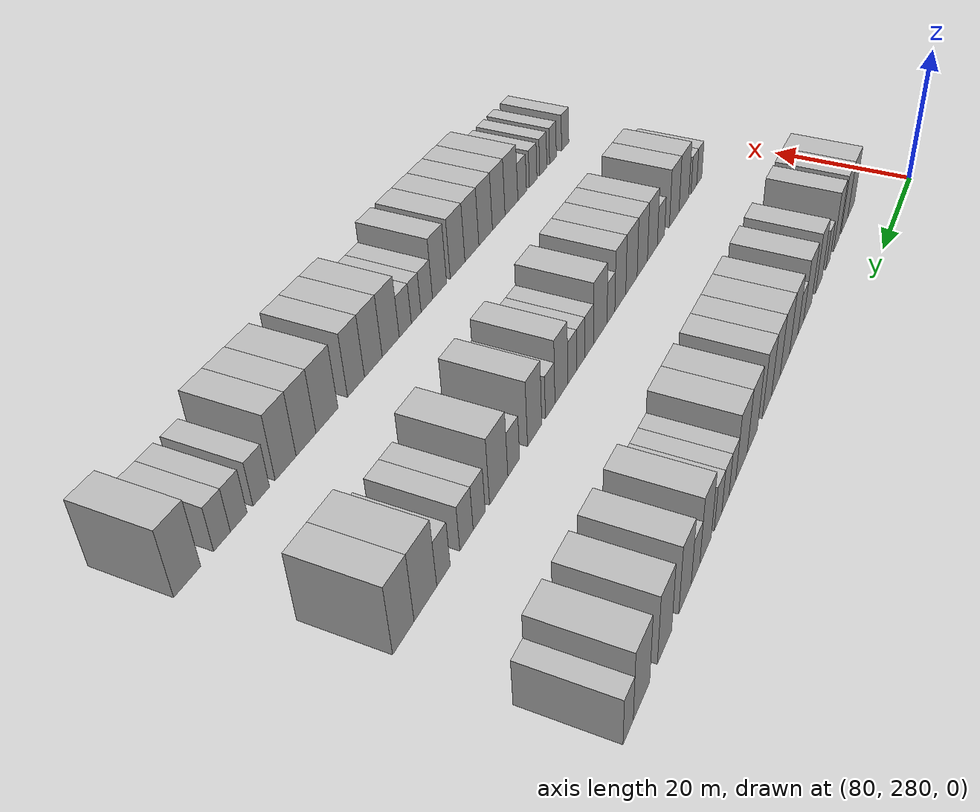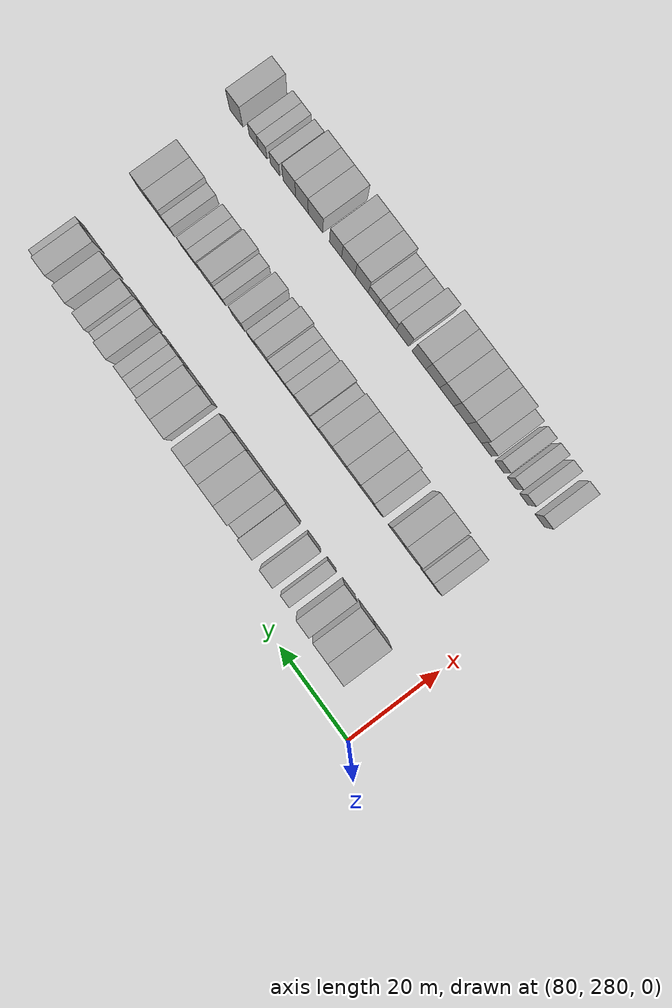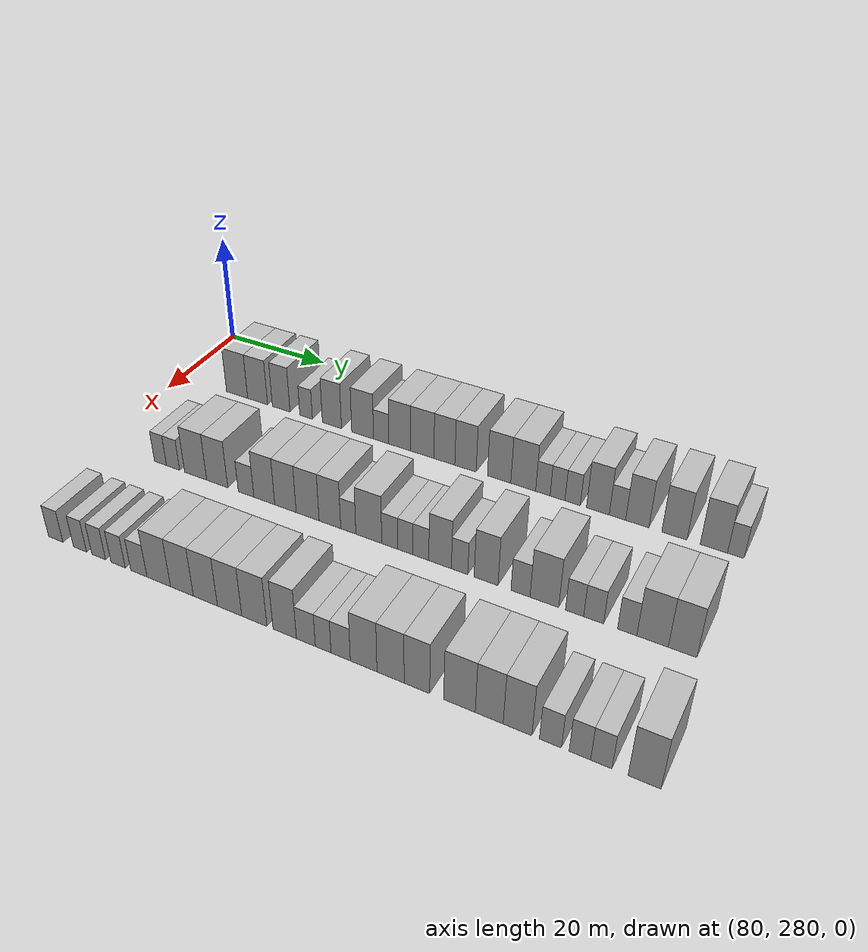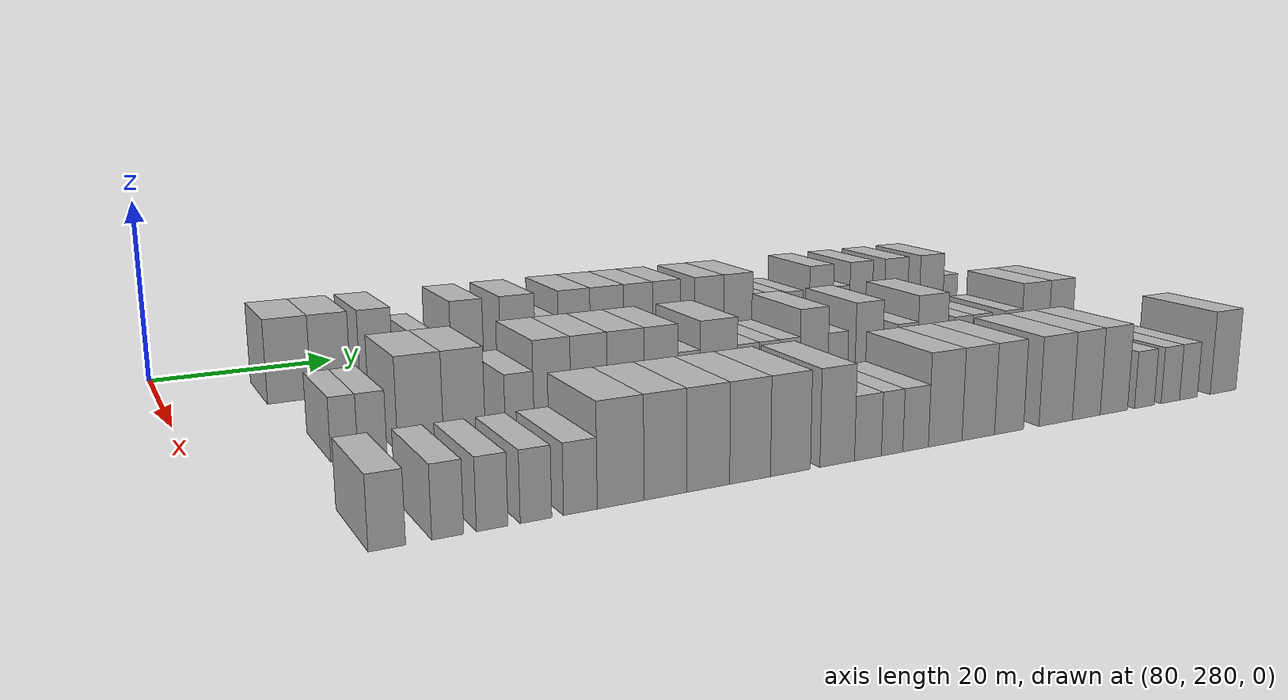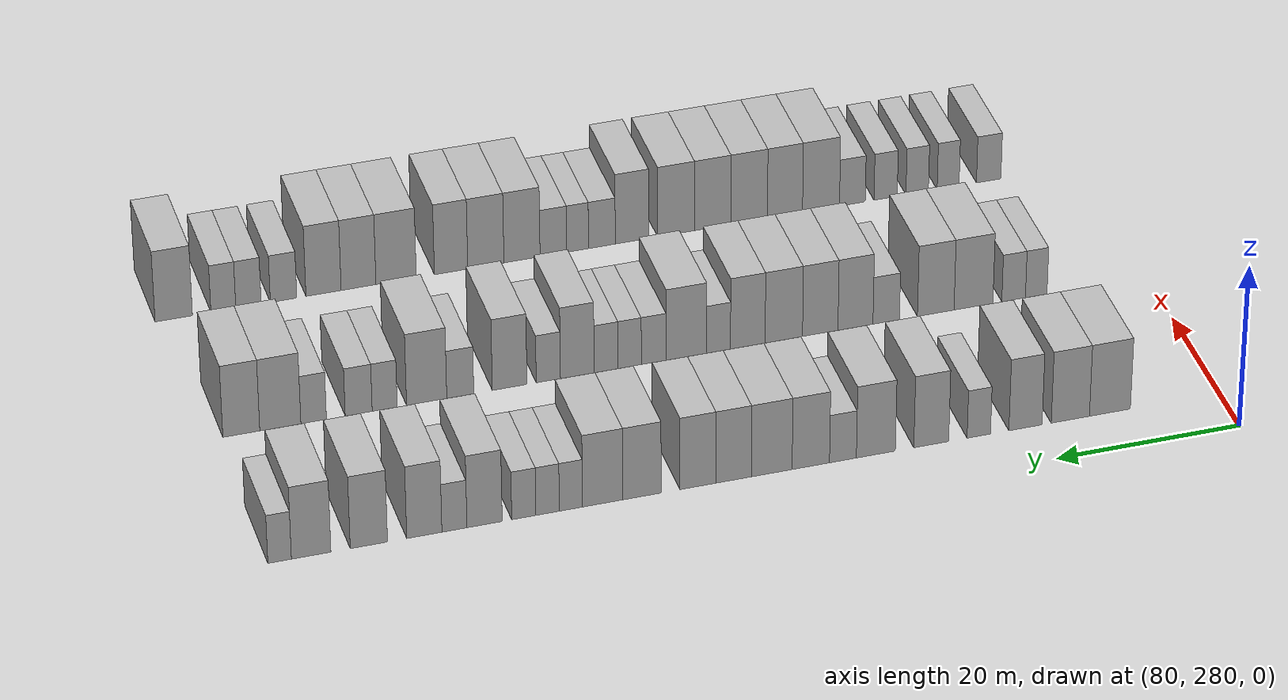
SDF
<sdf version="1.6">
 <world name="default">
  <model name="building_721">
   <static>1</static>
   <pose>91.0000 292.0585 0 0.000000 0.000000 0.000000</pose>
   <link name="link">
    <pose>0 0 4.50 0 0 0</pose>
    <collision name="collision"><geometry><box><size>10.0000 4.4937 9.0000</size></box></geometry></collision>
    <visual name="visual">
     <cast_shadows>0</cast_shadows>
     <geometry><box><size>10.0000 4.4937 9.0000</size></box></geometry>
     <material>
      <script>
       <uri>model://HANNAS_wall/materials/scripts</uri>
       <uri>model://HANNAS_wall/materials/textures</uri>
       <name>vrc/HANNAS_wall</name>
      </script>
     </material>
    </visual>
   </link>
  </model>
  <model name="building_722">
   <static>1</static>
   <pose>91.0000 296.3957 0 0.000000 0.000000 0.000000</pose>
   <link name="link">
    <pose>0 0 4.50 0 0 0</pose>
    <collision name="collision"><geometry><box><size>10.0000 4.1807 9.0000</size></box></geometry></collision>
    <visual name="visual">
     <cast_shadows>0</cast_shadows>
     <geometry><box><size>10.0000 4.1807 9.0000</size></box></geometry>
     <material>
      <script>
       <uri>model://HANNAS_wall/materials/scripts</uri>
       <uri>model://HANNAS_wall/materials/textures</uri>
       <name>vrc/HANNAS_wall</name>
      </script>
     </material>
    </visual>
   </link>
  </model>
  <model name="building_723">
   <static>1</static>
   <pose>91.0000 301.2977 0 0.000000 0.000000 0.000000</pose>
   <link name="link">
    <pose>0 0 4.50 0 0 0</pose>
    <collision name="collision"><geometry><box><size>10.0000 3.6233 9.0000</size></box></geometry></collision>
    <visual name="visual">
     <cast_shadows>0</cast_shadows>
     <geometry><box><size>10.0000 3.6233 9.0000</size></box></geometry>
     <material>
      <script>
       <uri>model://HANNAS_wall/materials/scripts</uri>
       <uri>model://HANNAS_wall/materials/textures</uri>
       <name>vrc/HANNAS_wall</name>
      </script>
     </material>
    </visual>
   </link>
  </model>
  <model name="building_724">
   <static>1</static>
   <pose>91.0000 306.3819 0 0.000000 0.000000 0.000000</pose>
   <link name="link">
    <pose>0 0 3.00 0 0 0</pose>
    <collision name="collision"><geometry><box><size>10.0000 2.5452 6.0000</size></box></geometry></collision>
    <visual name="visual">
     <cast_shadows>0</cast_shadows>
     <geometry><box><size>10.0000 2.5452 6.0000</size></box></geometry>
     <material>
      <script>
       <uri>model://HANNAS_wall/materials/scripts</uri>
       <uri>model://HANNAS_wall/materials/textures</uri>
       <name>vrc/HANNAS_wall</name>
      </script>
     </material>
    </visual>
   </link>
  </model>
  <model name="building_725">
   <static>1</static>
   <pose>91.0000 311.5425 0 0.000000 0.000000 0.000000</pose>
   <link name="link">
    <pose>0 0 4.50 0 0 0</pose>
    <collision name="collision"><geometry><box><size>10.0000 3.7760 9.0000</size></box></geometry></collision>
    <visual name="visual">
     <cast_shadows>0</cast_shadows>
     <geometry><box><size>10.0000 3.7760 9.0000</size></box></geometry>
     <material>
      <script>
       <uri>model://HANNAS_wall/materials/scripts</uri>
       <uri>model://HANNAS_wall/materials/textures</uri>
       <name>vrc/HANNAS_wall</name>
      </script>
     </material>
    </visual>
   </link>
  </model>
  <model name="building_726">
   <static>1</static>
   <pose>91.0000 317.5306 0 0.000000 0.000000 0.000000</pose>
   <link name="link">
    <pose>0 0 4.50 0 0 0</pose>
    <collision name="collision"><geometry><box><size>10.0000 4.2002 9.0000</size></box></geometry></collision>
    <visual name="visual">
     <cast_shadows>0</cast_shadows>
     <geometry><box><size>10.0000 4.2002 9.0000</size></box></geometry>
     <material>
      <script>
       <uri>model://HANNAS_wall/materials/scripts</uri>
       <uri>model://HANNAS_wall/materials/textures</uri>
       <name>vrc/HANNAS_wall</name>
      </script>
     </material>
    </visual>
   </link>
  </model>
  <model name="building_727">
   <static>1</static>
   <pose>91.0000 321.0768 0 0.000000 0.000000 0.000000</pose>
   <link name="link">
    <pose>0 0 3.00 0 0 0</pose>
    <collision name="collision"><geometry><box><size>10.0000 2.8922 6.0000</size></box></geometry></collision>
    <visual name="visual">
     <cast_shadows>0</cast_shadows>
     <geometry><box><size>10.0000 2.8922 6.0000</size></box></geometry>
     <material>
      <script>
       <uri>model://HANNAS_wall/materials/scripts</uri>
       <uri>model://HANNAS_wall/materials/textures</uri>
       <name>vrc/HANNAS_wall</name>
      </script>
     </material>
    </visual>
   </link>
  </model>
  <model name="building_728">
   <static>1</static>
   <pose>91.0000 324.5290 0 0.000000 0.000000 0.000000</pose>
   <link name="link">
    <pose>0 0 4.50 0 0 0</pose>
    <collision name="collision"><geometry><box><size>10.0000 4.0121 9.0000</size></box></geometry></collision>
    <visual name="visual">
     <cast_shadows>0</cast_shadows>
     <geometry><box><size>10.0000 4.0121 9.0000</size></box></geometry>
     <material>
      <script>
       <uri>model://HANNAS_wall/materials/scripts</uri>
       <uri>model://HANNAS_wall/materials/textures</uri>
       <name>vrc/HANNAS_wall</name>
      </script>
     </material>
    </visual>
   </link>
  </model>
  <model name="building_729">
   <static>1</static>
   <pose>91.0000 328.7197 0 0.000000 0.000000 0.000000</pose>
   <link name="link">
    <pose>0 0 4.50 0 0 0</pose>
    <collision name="collision"><geometry><box><size>10.0000 4.3693 9.0000</size></box></geometry></collision>
    <visual name="visual">
     <cast_shadows>0</cast_shadows>
     <geometry><box><size>10.0000 4.3693 9.0000</size></box></geometry>
     <material>
      <script>
       <uri>model://HANNAS_wall/materials/scripts</uri>
       <uri>model://HANNAS_wall/materials/textures</uri>
       <name>vrc/HANNAS_wall</name>
      </script>
     </material>
    </visual>
   </link>
  </model>
  <model name="building_730">
   <static>1</static>
   <pose>91.0000 332.8055 0 0.000000 0.000000 0.000000</pose>
   <link name="link">
    <pose>0 0 4.50 0 0 0</pose>
    <collision name="collision"><geometry><box><size>10.0000 3.8023 9.0000</size></box></geometry></collision>
    <visual name="visual">
     <cast_shadows>0</cast_shadows>
     <geometry><box><size>10.0000 3.8023 9.0000</size></box></geometry>
     <material>
      <script>
       <uri>model://HANNAS_wall/materials/scripts</uri>
       <uri>model://HANNAS_wall/materials/textures</uri>
       <name>vrc/HANNAS_wall</name>
      </script>
     </material>
    </visual>
   </link>
  </model>
  <model name="building_731">
   <static>1</static>
   <pose>91.0000 336.6059 0 0.000000 0.000000 0.000000</pose>
   <link name="link">
    <pose>0 0 4.50 0 0 0</pose>
    <collision name="collision"><geometry><box><size>10.0000 3.7986 9.0000</size></box></geometry></collision>
    <visual name="visual">
     <cast_shadows>0</cast_shadows>
     <geometry><box><size>10.0000 3.7986 9.0000</size></box></geometry>
     <material>
      <script>
       <uri>model://HANNAS_wall/materials/scripts</uri>
       <uri>model://HANNAS_wall/materials/textures</uri>
       <name>vrc/HANNAS_wall</name>
      </script>
     </material>
    </visual>
   </link>
  </model>
  <model name="building_732">
   <static>1</static>
   <pose>91.0000 342.5326 0 0.000000 0.000000 0.000000</pose>
   <link name="link">
    <pose>0 0 4.50 0 0 0</pose>
    <collision name="collision"><geometry><box><size>10.0000 4.0548 9.0000</size></box></geometry></collision>
    <visual name="visual">
     <cast_shadows>0</cast_shadows>
     <geometry><box><size>10.0000 4.0548 9.0000</size></box></geometry>
     <material>
      <script>
       <uri>model://HANNAS_wall/materials/scripts</uri>
       <uri>model://HANNAS_wall/materials/textures</uri>
       <name>vrc/HANNAS_wall</name>
      </script>
     </material>
    </visual>
   </link>
  </model>
  <model name="building_733">
   <static>1</static>
   <pose>91.0000 346.6892 0 0.000000 0.000000 0.000000</pose>
   <link name="link">
    <pose>0 0 4.50 0 0 0</pose>
    <collision name="collision"><geometry><box><size>10.0000 4.2583 9.0000</size></box></geometry></collision>
    <visual name="visual">
     <cast_shadows>0</cast_shadows>
     <geometry><box><size>10.0000 4.2583 9.0000</size></box></geometry>
     <material>
      <script>
       <uri>model://HANNAS_wall/materials/scripts</uri>
       <uri>model://HANNAS_wall/materials/textures</uri>
       <name>vrc/HANNAS_wall</name>
      </script>
     </material>
    </visual>
   </link>
  </model>
  <model name="building_734">
   <static>1</static>
   <pose>91.0000 350.0378 0 0.000000 0.000000 0.000000</pose>
   <link name="link">
    <pose>0 0 3.00 0 0 0</pose>
    <collision name="collision"><geometry><box><size>10.0000 2.4389 6.0000</size></box></geometry></collision>
    <visual name="visual">
     <cast_shadows>0</cast_shadows>
     <geometry><box><size>10.0000 2.4389 6.0000</size></box></geometry>
     <material>
      <script>
       <uri>model://HANNAS_wall/materials/scripts</uri>
       <uri>model://HANNAS_wall/materials/textures</uri>
       <name>vrc/HANNAS_wall</name>
      </script>
     </material>
    </visual>
   </link>
  </model>
  <model name="building_735">
   <static>1</static>
   <pose>91.0000 352.4924 0 0.000000 0.000000 0.000000</pose>
   <link name="link">
    <pose>0 0 3.00 0 0 0</pose>
    <collision name="collision"><geometry><box><size>10.0000 2.4704 6.0000</size></box></geometry></collision>
    <visual name="visual">
     <cast_shadows>0</cast_shadows>
     <geometry><box><size>10.0000 2.4704 6.0000</size></box></geometry>
     <material>
      <script>
       <uri>model://HANNAS_wall/materials/scripts</uri>
       <uri>model://HANNAS_wall/materials/textures</uri>
       <name>vrc/HANNAS_wall</name>
      </script>
     </material>
    </visual>
   </link>
  </model>
  <model name="building_736">
   <static>1</static>
   <pose>91.0000 354.9967 0 0.000000 0.000000 0.000000</pose>
   <link name="link">
    <pose>0 0 3.00 0 0 0</pose>
    <collision name="collision"><geometry><box><size>10.0000 2.5381 6.0000</size></box></geometry></collision>
    <visual name="visual">
     <cast_shadows>0</cast_shadows>
     <geometry><box><size>10.0000 2.5381 6.0000</size></box></geometry>
     <material>
      <script>
       <uri>model://HANNAS_wall/materials/scripts</uri>
       <uri>model://HANNAS_wall/materials/textures</uri>
       <name>vrc/HANNAS_wall</name>
      </script>
     </material>
    </visual>
   </link>
  </model>
  <model name="building_737">
   <static>1</static>
   <pose>91.0000 359.1101 0 0.000000 0.000000 0.000000</pose>
   <link name="link">
    <pose>0 0 4.50 0 0 0</pose>
    <collision name="collision"><geometry><box><size>10.0000 3.6887 9.0000</size></box></geometry></collision>
    <visual name="visual">
     <cast_shadows>0</cast_shadows>
     <geometry><box><size>10.0000 3.6887 9.0000</size></box></geometry>
     <material>
      <script>
       <uri>model://HANNAS_wall/materials/scripts</uri>
       <uri>model://HANNAS_wall/materials/textures</uri>
       <name>vrc/HANNAS_wall</name>
      </script>
     </material>
    </visual>
   </link>
  </model>
  <model name="building_738">
   <static>1</static>
   <pose>91.0000 362.2633 0 0.000000 0.000000 0.000000</pose>
   <link name="link">
    <pose>0 0 3.00 0 0 0</pose>
    <collision name="collision"><geometry><box><size>10.0000 2.6177 6.0000</size></box></geometry></collision>
    <visual name="visual">
     <cast_shadows>0</cast_shadows>
     <geometry><box><size>10.0000 2.6177 6.0000</size></box></geometry>
     <material>
      <script>
       <uri>model://HANNAS_wall/materials/scripts</uri>
       <uri>model://HANNAS_wall/materials/textures</uri>
       <name>vrc/HANNAS_wall</name>
      </script>
     </material>
    </visual>
   </link>
  </model>
  <model name="building_739">
   <static>1</static>
   <pose>91.0000 365.4045 0 0.000000 0.000000 0.000000</pose>
   <link name="link">
    <pose>0 0 4.50 0 0 0</pose>
    <collision name="collision"><geometry><box><size>10.0000 3.6646 9.0000</size></box></geometry></collision>
    <visual name="visual">
     <cast_shadows>0</cast_shadows>
     <geometry><box><size>10.0000 3.6646 9.0000</size></box></geometry>
     <material>
      <script>
       <uri>model://HANNAS_wall/materials/scripts</uri>
       <uri>model://HANNAS_wall/materials/textures</uri>
       <name>vrc/HANNAS_wall</name>
      </script>
     </material>
    </visual>
   </link>
  </model>
  <model name="building_740">
   <static>1</static>
   <pose>91.0000 371.1718 0 0.000000 0.000000 0.000000</pose>
   <link name="link">
    <pose>0 0 4.50 0 0 0</pose>
    <collision name="collision"><geometry><box><size>10.0000 3.8701 9.0000</size></box></geometry></collision>
    <visual name="visual">
     <cast_shadows>0</cast_shadows>
     <geometry><box><size>10.0000 3.8701 9.0000</size></box></geometry>
     <material>
      <script>
       <uri>model://HANNAS_wall/materials/scripts</uri>
       <uri>model://HANNAS_wall/materials/textures</uri>
       <name>vrc/HANNAS_wall</name>
      </script>
     </material>
    </visual>
   </link>
  </model>
  <model name="building_741">
   <static>1</static>
   <pose>91.0000 377.1480 0 0.000000 0.000000 0.000000</pose>
   <link name="link">
    <pose>0 0 4.50 0 0 0</pose>
    <collision name="collision"><geometry><box><size>10.0000 4.0823 9.0000</size></box></geometry></collision>
    <visual name="visual">
     <cast_shadows>0</cast_shadows>
     <geometry><box><size>10.0000 4.0823 9.0000</size></box></geometry>
     <material>
      <script>
       <uri>model://HANNAS_wall/materials/scripts</uri>
       <uri>model://HANNAS_wall/materials/textures</uri>
       <name>vrc/HANNAS_wall</name>
      </script>
     </material>
    </visual>
   </link>
  </model>
  <model name="building_742">
   <static>1</static>
   <pose>91.0000 380.4035 0 0.000000 0.000000 0.000000</pose>
   <link name="link">
    <pose>0 0 3.00 0 0 0</pose>
    <collision name="collision"><geometry><box><size>10.0000 2.4286 6.0000</size></box></geometry></collision>
    <visual name="visual">
     <cast_shadows>0</cast_shadows>
     <geometry><box><size>10.0000 2.4286 6.0000</size></box></geometry>
     <material>
      <script>
       <uri>model://HANNAS_wall/materials/scripts</uri>
       <uri>model://HANNAS_wall/materials/textures</uri>
       <name>vrc/HANNAS_wall</name>
      </script>
     </material>
    </visual>
   </link>
  </model>
  <model name="building_906">
   <static>1</static>
   <pose>113.0000 292.4728 0 0.000000 0.000000 0.000000</pose>
   <link name="link">
    <pose>0 0 3.00 0 0 0</pose>
    <collision name="collision"><geometry><box><size>10.0000 2.4201 6.0000</size></box></geometry></collision>
    <visual name="visual">
     <cast_shadows>0</cast_shadows>
     <geometry><box><size>10.0000 2.4201 6.0000</size></box></geometry>
     <material>
      <script>
       <uri>model://HANNAS_wall/materials/scripts</uri>
       <uri>model://HANNAS_wall/materials/textures</uri>
       <name>vrc/HANNAS_wall</name>
      </script>
     </material>
    </visual>
   </link>
  </model>
  <model name="building_907">
   <static>1</static>
   <pose>113.0000 295.0075 0 0.000000 0.000000 0.000000</pose>
   <link name="link">
    <pose>0 0 3.00 0 0 0</pose>
    <collision name="collision"><geometry><box><size>10.0000 2.6494 6.0000</size></box></geometry></collision>
    <visual name="visual">
     <cast_shadows>0</cast_shadows>
     <geometry><box><size>10.0000 2.6494 6.0000</size></box></geometry>
     <material>
      <script>
       <uri>model://HANNAS_wall/materials/scripts</uri>
       <uri>model://HANNAS_wall/materials/textures</uri>
       <name>vrc/HANNAS_wall</name>
      </script>
     </material>
    </visual>
   </link>
  </model>
  <model name="building_908">
   <static>1</static>
   <pose>113.0000 299.5027 0 0.000000 0.000000 0.000000</pose>
   <link name="link">
    <pose>0 0 4.50 0 0 0</pose>
    <collision name="collision"><geometry><box><size>10.0000 4.3410 9.0000</size></box></geometry></collision>
    <visual name="visual">
     <cast_shadows>0</cast_shadows>
     <geometry><box><size>10.0000 4.3410 9.0000</size></box></geometry>
     <material>
      <script>
       <uri>model://HANNAS_wall/materials/scripts</uri>
       <uri>model://HANNAS_wall/materials/textures</uri>
       <name>vrc/HANNAS_wall</name>
      </script>
     </material>
    </visual>
   </link>
  </model>
  <model name="building_909">
   <static>1</static>
   <pose>113.0000 303.7145 0 0.000000 0.000000 0.000000</pose>
   <link name="link">
    <pose>0 0 4.50 0 0 0</pose>
    <collision name="collision"><geometry><box><size>10.0000 4.0826 9.0000</size></box></geometry></collision>
    <visual name="visual">
     <cast_shadows>0</cast_shadows>
     <geometry><box><size>10.0000 4.0826 9.0000</size></box></geometry>
     <material>
      <script>
       <uri>model://HANNAS_wall/materials/scripts</uri>
       <uri>model://HANNAS_wall/materials/textures</uri>
       <name>vrc/HANNAS_wall</name>
      </script>
     </material>
    </visual>
   </link>
  </model>
  <model name="building_910">
   <static>1</static>
   <pose>113.0000 309.2271 0 0.000000 0.000000 0.000000</pose>
   <link name="link">
    <pose>0 0 3.00 0 0 0</pose>
    <collision name="collision"><geometry><box><size>10.0000 2.9424 6.0000</size></box></geometry></collision>
    <visual name="visual">
     <cast_shadows>0</cast_shadows>
     <geometry><box><size>10.0000 2.9424 6.0000</size></box></geometry>
     <material>
      <script>
       <uri>model://HANNAS_wall/materials/scripts</uri>
       <uri>model://HANNAS_wall/materials/textures</uri>
       <name>vrc/HANNAS_wall</name>
      </script>
     </material>
    </visual>
   </link>
  </model>
  <model name="building_911">
   <static>1</static>
   <pose>113.0000 312.6380 0 0.000000 0.000000 0.000000</pose>
   <link name="link">
    <pose>0 0 4.50 0 0 0</pose>
    <collision name="collision"><geometry><box><size>10.0000 3.8795 9.0000</size></box></geometry></collision>
    <visual name="visual">
     <cast_shadows>0</cast_shadows>
     <geometry><box><size>10.0000 3.8795 9.0000</size></box></geometry>
     <material>
      <script>
       <uri>model://HANNAS_wall/materials/scripts</uri>
       <uri>model://HANNAS_wall/materials/textures</uri>
       <name>vrc/HANNAS_wall</name>
      </script>
     </material>
    </visual>
   </link>
  </model>
  <model name="building_912">
   <static>1</static>
   <pose>113.0000 316.5339 0 0.000000 0.000000 0.000000</pose>
   <link name="link">
    <pose>0 0 4.50 0 0 0</pose>
    <collision name="collision"><geometry><box><size>10.0000 3.9123 9.0000</size></box></geometry></collision>
    <visual name="visual">
     <cast_shadows>0</cast_shadows>
     <geometry><box><size>10.0000 3.9123 9.0000</size></box></geometry>
     <material>
      <script>
       <uri>model://HANNAS_wall/materials/scripts</uri>
       <uri>model://HANNAS_wall/materials/textures</uri>
       <name>vrc/HANNAS_wall</name>
      </script>
     </material>
    </visual>
   </link>
  </model>
  <model name="building_913">
   <static>1</static>
   <pose>113.0000 320.5513 0 0.000000 0.000000 0.000000</pose>
   <link name="link">
    <pose>0 0 4.50 0 0 0</pose>
    <collision name="collision"><geometry><box><size>10.0000 4.1224 9.0000</size></box></geometry></collision>
    <visual name="visual">
     <cast_shadows>0</cast_shadows>
     <geometry><box><size>10.0000 4.1224 9.0000</size></box></geometry>
     <material>
      <script>
       <uri>model://HANNAS_wall/materials/scripts</uri>
       <uri>model://HANNAS_wall/materials/textures</uri>
       <name>vrc/HANNAS_wall</name>
      </script>
     </material>
    </visual>
   </link>
  </model>
  <model name="building_914">
   <static>1</static>
   <pose>113.0000 324.5158 0 0.000000 0.000000 0.000000</pose>
   <link name="link">
    <pose>0 0 4.50 0 0 0</pose>
    <collision name="collision"><geometry><box><size>10.0000 3.8066 9.0000</size></box></geometry></collision>
    <visual name="visual">
     <cast_shadows>0</cast_shadows>
     <geometry><box><size>10.0000 3.8066 9.0000</size></box></geometry>
     <material>
      <script>
       <uri>model://HANNAS_wall/materials/scripts</uri>
       <uri>model://HANNAS_wall/materials/textures</uri>
       <name>vrc/HANNAS_wall</name>
      </script>
     </material>
    </visual>
   </link>
  </model>
  <model name="building_915">
   <static>1</static>
   <pose>113.0000 327.7314 0 0.000000 0.000000 0.000000</pose>
   <link name="link">
    <pose>0 0 3.00 0 0 0</pose>
    <collision name="collision"><geometry><box><size>10.0000 2.6244 6.0000</size></box></geometry></collision>
    <visual name="visual">
     <cast_shadows>0</cast_shadows>
     <geometry><box><size>10.0000 2.6244 6.0000</size></box></geometry>
     <material>
      <script>
       <uri>model://HANNAS_wall/materials/scripts</uri>
       <uri>model://HANNAS_wall/materials/textures</uri>
       <name>vrc/HANNAS_wall</name>
      </script>
     </material>
    </visual>
   </link>
  </model>
  <model name="building_916">
   <static>1</static>
   <pose>113.0000 331.2563 0 0.000000 0.000000 0.000000</pose>
   <link name="link">
    <pose>0 0 4.50 0 0 0</pose>
    <collision name="collision"><geometry><box><size>10.0000 4.4254 9.0000</size></box></geometry></collision>
    <visual name="visual">
     <cast_shadows>0</cast_shadows>
     <geometry><box><size>10.0000 4.4254 9.0000</size></box></geometry>
     <material>
      <script>
       <uri>model://HANNAS_wall/materials/scripts</uri>
       <uri>model://HANNAS_wall/materials/textures</uri>
       <name>vrc/HANNAS_wall</name>
      </script>
     </material>
    </visual>
   </link>
  </model>
  <model name="building_917">
   <static>1</static>
   <pose>113.0000 334.8169 0 0.000000 0.000000 0.000000</pose>
   <link name="link">
    <pose>0 0 3.00 0 0 0</pose>
    <collision name="collision"><geometry><box><size>10.0000 2.6958 6.0000</size></box></geometry></collision>
    <visual name="visual">
     <cast_shadows>0</cast_shadows>
     <geometry><box><size>10.0000 2.6958 6.0000</size></box></geometry>
     <material>
      <script>
       <uri>model://HANNAS_wall/materials/scripts</uri>
       <uri>model://HANNAS_wall/materials/textures</uri>
       <name>vrc/HANNAS_wall</name>
      </script>
     </material>
    </visual>
   </link>
  </model>
  <model name="building_918">
   <static>1</static>
   <pose>113.0000 337.4240 0 0.000000 0.000000 0.000000</pose>
   <link name="link">
    <pose>0 0 3.00 0 0 0</pose>
    <collision name="collision"><geometry><box><size>10.0000 2.5184 6.0000</size></box></geometry></collision>
    <visual name="visual">
     <cast_shadows>0</cast_shadows>
     <geometry><box><size>10.0000 2.5184 6.0000</size></box></geometry>
     <material>
      <script>
       <uri>model://HANNAS_wall/materials/scripts</uri>
       <uri>model://HANNAS_wall/materials/textures</uri>
       <name>vrc/HANNAS_wall</name>
      </script>
     </material>
    </visual>
   </link>
  </model>
  <model name="building_919">
   <static>1</static>
   <pose>113.0000 339.9888 0 0.000000 0.000000 0.000000</pose>
   <link name="link">
    <pose>0 0 3.00 0 0 0</pose>
    <collision name="collision"><geometry><box><size>10.0000 2.6111 6.0000</size></box></geometry></collision>
    <visual name="visual">
     <cast_shadows>0</cast_shadows>
     <geometry><box><size>10.0000 2.6111 6.0000</size></box></geometry>
     <material>
      <script>
       <uri>model://HANNAS_wall/materials/scripts</uri>
       <uri>model://HANNAS_wall/materials/textures</uri>
       <name>vrc/HANNAS_wall</name>
      </script>
     </material>
    </visual>
   </link>
  </model>
  <model name="building_920">
   <static>1</static>
   <pose>113.0000 343.1233 0 0.000000 0.000000 0.000000</pose>
   <link name="link">
    <pose>0 0 4.50 0 0 0</pose>
    <collision name="collision"><geometry><box><size>10.0000 3.6580 9.0000</size></box></geometry></collision>
    <visual name="visual">
     <cast_shadows>0</cast_shadows>
     <geometry><box><size>10.0000 3.6580 9.0000</size></box></geometry>
     <material>
      <script>
       <uri>model://HANNAS_wall/materials/scripts</uri>
       <uri>model://HANNAS_wall/materials/textures</uri>
       <name>vrc/HANNAS_wall</name>
      </script>
     </material>
    </visual>
   </link>
  </model>
  <model name="building_921">
   <static>1</static>
   <pose>113.0000 346.2637 0 0.000000 0.000000 0.000000</pose>
   <link name="link">
    <pose>0 0 3.00 0 0 0</pose>
    <collision name="collision"><geometry><box><size>10.0000 2.6228 6.0000</size></box></geometry></collision>
    <visual name="visual">
     <cast_shadows>0</cast_shadows>
     <geometry><box><size>10.0000 2.6228 6.0000</size></box></geometry>
     <material>
      <script>
       <uri>model://HANNAS_wall/materials/scripts</uri>
       <uri>model://HANNAS_wall/materials/textures</uri>
       <name>vrc/HANNAS_wall</name>
      </script>
     </material>
    </visual>
   </link>
  </model>
  <model name="building_922">
   <static>1</static>
   <pose>113.0000 350.4459 0 0.000000 0.000000 0.000000</pose>
   <link name="link">
    <pose>0 0 4.50 0 0 0</pose>
    <collision name="collision"><geometry><box><size>10.0000 3.7417 9.0000</size></box></geometry></collision>
    <visual name="visual">
     <cast_shadows>0</cast_shadows>
     <geometry><box><size>10.0000 3.7417 9.0000</size></box></geometry>
     <material>
      <script>
       <uri>model://HANNAS_wall/materials/scripts</uri>
       <uri>model://HANNAS_wall/materials/textures</uri>
       <name>vrc/HANNAS_wall</name>
      </script>
     </material>
    </visual>
   </link>
  </model>
  <model name="building_923">
   <static>1</static>
   <pose>113.0000 355.7670 0 0.000000 0.000000 0.000000</pose>
   <link name="link">
    <pose>0 0 3.00 0 0 0</pose>
    <collision name="collision"><geometry><box><size>10.0000 2.9006 6.0000</size></box></geometry></collision>
    <visual name="visual">
     <cast_shadows>0</cast_shadows>
     <geometry><box><size>10.0000 2.9006 6.0000</size></box></geometry>
     <material>
      <script>
       <uri>model://HANNAS_wall/materials/scripts</uri>
       <uri>model://HANNAS_wall/materials/textures</uri>
       <name>vrc/HANNAS_wall</name>
      </script>
     </material>
    </visual>
   </link>
  </model>
  <model name="building_924">
   <static>1</static>
   <pose>113.0000 359.3748 0 0.000000 0.000000 0.000000</pose>
   <link name="link">
    <pose>0 0 4.50 0 0 0</pose>
    <collision name="collision"><geometry><box><size>10.0000 4.3148 9.0000</size></box></geometry></collision>
    <visual name="visual">
     <cast_shadows>0</cast_shadows>
     <geometry><box><size>10.0000 4.3148 9.0000</size></box></geometry>
     <material>
      <script>
       <uri>model://HANNAS_wall/materials/scripts</uri>
       <uri>model://HANNAS_wall/materials/textures</uri>
       <name>vrc/HANNAS_wall</name>
      </script>
     </material>
    </visual>
   </link>
  </model>
  <model name="building_925">
   <static>1</static>
   <pose>113.0000 363.8686 0 0.000000 0.000000 0.000000</pose>
   <link name="link">
    <pose>0 0 3.00 0 0 0</pose>
    <collision name="collision"><geometry><box><size>10.0000 2.6728 6.0000</size></box></geometry></collision>
    <visual name="visual">
     <cast_shadows>0</cast_shadows>
     <geometry><box><size>10.0000 2.6728 6.0000</size></box></geometry>
     <material>
      <script>
       <uri>model://HANNAS_wall/materials/scripts</uri>
       <uri>model://HANNAS_wall/materials/textures</uri>
       <name>vrc/HANNAS_wall</name>
      </script>
     </material>
    </visual>
   </link>
  </model>
  <model name="building_926">
   <static>1</static>
   <pose>113.0000 366.6450 0 0.000000 0.000000 0.000000</pose>
   <link name="link">
    <pose>0 0 3.00 0 0 0</pose>
    <collision name="collision"><geometry><box><size>10.0000 2.8801 6.0000</size></box></geometry></collision>
    <visual name="visual">
     <cast_shadows>0</cast_shadows>
     <geometry><box><size>10.0000 2.8801 6.0000</size></box></geometry>
     <material>
      <script>
       <uri>model://HANNAS_wall/materials/scripts</uri>
       <uri>model://HANNAS_wall/materials/textures</uri>
       <name>vrc/HANNAS_wall</name>
      </script>
     </material>
    </visual>
   </link>
  </model>
  <model name="building_927">
   <static>1</static>
   <pose>113.0000 371.4441 0 0.000000 0.000000 0.000000</pose>
   <link name="link">
    <pose>0 0 3.00 0 0 0</pose>
    <collision name="collision"><geometry><box><size>10.0000 2.7182 6.0000</size></box></geometry></collision>
    <visual name="visual">
     <cast_shadows>0</cast_shadows>
     <geometry><box><size>10.0000 2.7182 6.0000</size></box></geometry>
     <material>
      <script>
       <uri>model://HANNAS_wall/materials/scripts</uri>
       <uri>model://HANNAS_wall/materials/textures</uri>
       <name>vrc/HANNAS_wall</name>
      </script>
     </material>
    </visual>
   </link>
  </model>
  <model name="building_928">
   <static>1</static>
   <pose>113.0000 374.9821 0 0.000000 0.000000 0.000000</pose>
   <link name="link">
    <pose>0 0 4.50 0 0 0</pose>
    <collision name="collision"><geometry><box><size>10.0000 4.3579 9.0000</size></box></geometry></collision>
    <visual name="visual">
     <cast_shadows>0</cast_shadows>
     <geometry><box><size>10.0000 4.3579 9.0000</size></box></geometry>
     <material>
      <script>
       <uri>model://HANNAS_wall/materials/scripts</uri>
       <uri>model://HANNAS_wall/materials/textures</uri>
       <name>vrc/HANNAS_wall</name>
      </script>
     </material>
    </visual>
   </link>
  </model>
  <model name="building_929">
   <static>1</static>
   <pose>113.0000 379.1160 0 0.000000 0.000000 0.000000</pose>
   <link name="link">
    <pose>0 0 4.50 0 0 0</pose>
    <collision name="collision"><geometry><box><size>10.0000 3.9099 9.0000</size></box></geometry></collision>
    <visual name="visual">
     <cast_shadows>0</cast_shadows>
     <geometry><box><size>10.0000 3.9099 9.0000</size></box></geometry>
     <material>
      <script>
       <uri>model://HANNAS_wall/materials/scripts</uri>
       <uri>model://HANNAS_wall/materials/textures</uri>
       <name>vrc/HANNAS_wall</name>
      </script>
     </material>
    </visual>
   </link>
  </model>
  <model name="building_1100">
   <static>1</static>
   <pose>135.0000 290.2954 0 0.000000 0.000000 0.000000</pose>
   <link name="link">
    <pose>0 0 3.00 0 0 0</pose>
    <collision name="collision"><geometry><box><size>10.0000 2.8101 6.0000</size></box></geometry></collision>
    <visual name="visual">
     <cast_shadows>0</cast_shadows>
     <geometry><box><size>10.0000 2.8101 6.0000</size></box></geometry>
     <material>
      <script>
       <uri>model://HANNAS_wall/materials/scripts</uri>
       <uri>model://HANNAS_wall/materials/textures</uri>
       <name>vrc/HANNAS_wall</name>
      </script>
     </material>
    </visual>
   </link>
  </model>
  <model name="building_1101">
   <static>1</static>
   <pose>135.0000 294.9564 0 0.000000 0.000000 0.000000</pose>
   <link name="link">
    <pose>0 0 3.00 0 0 0</pose>
    <collision name="collision"><geometry><box><size>10.0000 2.5119 6.0000</size></box></geometry></collision>
    <visual name="visual">
     <cast_shadows>0</cast_shadows>
     <geometry><box><size>10.0000 2.5119 6.0000</size></box></geometry>
     <material>
      <script>
       <uri>model://HANNAS_wall/materials/scripts</uri>
       <uri>model://HANNAS_wall/materials/textures</uri>
       <name>vrc/HANNAS_wall</name>
      </script>
     </material>
    </visual>
   </link>
  </model>
  <model name="building_1102">
   <static>1</static>
   <pose>135.0000 298.4973 0 0.000000 0.000000 0.000000</pose>
   <link name="link">
    <pose>0 0 3.00 0 0 0</pose>
    <collision name="collision"><geometry><box><size>10.0000 2.5699 6.0000</size></box></geometry></collision>
    <visual name="visual">
     <cast_shadows>0</cast_shadows>
     <geometry><box><size>10.0000 2.5699 6.0000</size></box></geometry>
     <material>
      <script>
       <uri>model://HANNAS_wall/materials/scripts</uri>
       <uri>model://HANNAS_wall/materials/textures</uri>
       <name>vrc/HANNAS_wall</name>
      </script>
     </material>
    </visual>
   </link>
  </model>
  <model name="building_1103">
   <static>1</static>
   <pose>135.0000 302.1057 0 0.000000 0.000000 0.000000</pose>
   <link name="link">
    <pose>0 0 3.00 0 0 0</pose>
    <collision name="collision"><geometry><box><size>10.0000 2.6469 6.0000</size></box></geometry></collision>
    <visual name="visual">
     <cast_shadows>0</cast_shadows>
     <geometry><box><size>10.0000 2.6469 6.0000</size></box></geometry>
     <material>
      <script>
       <uri>model://HANNAS_wall/materials/scripts</uri>
       <uri>model://HANNAS_wall/materials/textures</uri>
       <name>vrc/HANNAS_wall</name>
      </script>
     </material>
    </visual>
   </link>
  </model>
  <model name="building_1104">
   <static>1</static>
   <pose>135.0000 305.8947 0 0.000000 0.000000 0.000000</pose>
   <link name="link">
    <pose>0 0 3.00 0 0 0</pose>
    <collision name="collision"><geometry><box><size>10.0000 2.9312 6.0000</size></box></geometry></collision>
    <visual name="visual">
     <cast_shadows>0</cast_shadows>
     <geometry><box><size>10.0000 2.9312 6.0000</size></box></geometry>
     <material>
      <script>
       <uri>model://HANNAS_wall/materials/scripts</uri>
       <uri>model://HANNAS_wall/materials/textures</uri>
       <name>vrc/HANNAS_wall</name>
      </script>
     </material>
    </visual>
   </link>
  </model>
  <model name="building_1105">
   <static>1</static>
   <pose>135.0000 309.4606 0 0.000000 0.000000 0.000000</pose>
   <link name="link">
    <pose>0 0 4.50 0 0 0</pose>
    <collision name="collision"><geometry><box><size>10.0000 4.2006 9.0000</size></box></geometry></collision>
    <visual name="visual">
     <cast_shadows>0</cast_shadows>
     <geometry><box><size>10.0000 4.2006 9.0000</size></box></geometry>
     <material>
      <script>
       <uri>model://HANNAS_wall/materials/scripts</uri>
       <uri>model://HANNAS_wall/materials/textures</uri>
       <name>vrc/HANNAS_wall</name>
      </script>
     </material>
    </visual>
   </link>
  </model>
  <model name="building_1106">
   <static>1</static>
   <pose>135.0000 313.5526 0 0.000000 0.000000 0.000000</pose>
   <link name="link">
    <pose>0 0 4.50 0 0 0</pose>
    <collision name="collision"><geometry><box><size>10.0000 3.9833 9.0000</size></box></geometry></collision>
    <visual name="visual">
     <cast_shadows>0</cast_shadows>
     <geometry><box><size>10.0000 3.9833 9.0000</size></box></geometry>
     <material>
      <script>
       <uri>model://HANNAS_wall/materials/scripts</uri>
       <uri>model://HANNAS_wall/materials/textures</uri>
       <name>vrc/HANNAS_wall</name>
      </script>
     </material>
    </visual>
   </link>
  </model>
  <model name="building_1107">
   <static>1</static>
   <pose>135.0000 317.6091 0 0.000000 0.000000 0.000000</pose>
   <link name="link">
    <pose>0 0 4.50 0 0 0</pose>
    <collision name="collision"><geometry><box><size>10.0000 4.1298 9.0000</size></box></geometry></collision>
    <visual name="visual">
     <cast_shadows>0</cast_shadows>
     <geometry><box><size>10.0000 4.1298 9.0000</size></box></geometry>
     <material>
      <script>
       <uri>model://HANNAS_wall/materials/scripts</uri>
       <uri>model://HANNAS_wall/materials/textures</uri>
       <name>vrc/HANNAS_wall</name>
      </script>
     </material>
    </visual>
   </link>
  </model>
  <model name="building_1108">
   <static>1</static>
   <pose>135.0000 321.7175 0 0.000000 0.000000 0.000000</pose>
   <link name="link">
    <pose>0 0 4.50 0 0 0</pose>
    <collision name="collision"><geometry><box><size>10.0000 4.0871 9.0000</size></box></geometry></collision>
    <visual name="visual">
     <cast_shadows>0</cast_shadows>
     <geometry><box><size>10.0000 4.0871 9.0000</size></box></geometry>
     <material>
      <script>
       <uri>model://HANNAS_wall/materials/scripts</uri>
       <uri>model://HANNAS_wall/materials/textures</uri>
       <name>vrc/HANNAS_wall</name>
      </script>
     </material>
    </visual>
   </link>
  </model>
  <model name="building_1109">
   <static>1</static>
   <pose>135.0000 325.8304 0 0.000000 0.000000 0.000000</pose>
   <link name="link">
    <pose>0 0 4.50 0 0 0</pose>
    <collision name="collision"><geometry><box><size>10.0000 4.1387 9.0000</size></box></geometry></collision>
    <visual name="visual">
     <cast_shadows>0</cast_shadows>
     <geometry><box><size>10.0000 4.1387 9.0000</size></box></geometry>
     <material>
      <script>
       <uri>model://HANNAS_wall/materials/scripts</uri>
       <uri>model://HANNAS_wall/materials/textures</uri>
       <name>vrc/HANNAS_wall</name>
      </script>
     </material>
    </visual>
   </link>
  </model>
  <model name="building_1110">
   <static>1</static>
   <pose>135.0000 330.7717 0 0.000000 0.000000 0.000000</pose>
   <link name="link">
    <pose>0 0 4.50 0 0 0</pose>
    <collision name="collision"><geometry><box><size>10.0000 3.7439 9.0000</size></box></geometry></collision>
    <visual name="visual">
     <cast_shadows>0</cast_shadows>
     <geometry><box><size>10.0000 3.7439 9.0000</size></box></geometry>
     <material>
      <script>
       <uri>model://HANNAS_wall/materials/scripts</uri>
       <uri>model://HANNAS_wall/materials/textures</uri>
       <name>vrc/HANNAS_wall</name>
      </script>
     </material>
    </visual>
   </link>
  </model>
  <model name="building_1111">
   <static>1</static>
   <pose>135.0000 334.1389 0 0.000000 0.000000 0.000000</pose>
   <link name="link">
    <pose>0 0 3.00 0 0 0</pose>
    <collision name="collision"><geometry><box><size>10.0000 2.9906 6.0000</size></box></geometry></collision>
    <visual name="visual">
     <cast_shadows>0</cast_shadows>
     <geometry><box><size>10.0000 2.9906 6.0000</size></box></geometry>
     <material>
      <script>
       <uri>model://HANNAS_wall/materials/scripts</uri>
       <uri>model://HANNAS_wall/materials/textures</uri>
       <name>vrc/HANNAS_wall</name>
      </script>
     </material>
    </visual>
   </link>
  </model>
  <model name="building_1112">
   <static>1</static>
   <pose>135.0000 336.8497 0 0.000000 0.000000 0.000000</pose>
   <link name="link">
    <pose>0 0 3.00 0 0 0</pose>
    <collision name="collision"><geometry><box><size>10.0000 2.4308 6.0000</size></box></geometry></collision>
    <visual name="visual">
     <cast_shadows>0</cast_shadows>
     <geometry><box><size>10.0000 2.4308 6.0000</size></box></geometry>
     <material>
      <script>
       <uri>model://HANNAS_wall/materials/scripts</uri>
       <uri>model://HANNAS_wall/materials/textures</uri>
       <name>vrc/HANNAS_wall</name>
      </script>
     </material>
    </visual>
   </link>
  </model>
  <model name="building_1113">
   <static>1</static>
   <pose>135.0000 339.5492 0 0.000000 0.000000 0.000000</pose>
   <link name="link">
    <pose>0 0 3.00 0 0 0</pose>
    <collision name="collision"><geometry><box><size>10.0000 2.9683 6.0000</size></box></geometry></collision>
    <visual name="visual">
     <cast_shadows>0</cast_shadows>
     <geometry><box><size>10.0000 2.9683 6.0000</size></box></geometry>
     <material>
      <script>
       <uri>model://HANNAS_wall/materials/scripts</uri>
       <uri>model://HANNAS_wall/materials/textures</uri>
       <name>vrc/HANNAS_wall</name>
      </script>
     </material>
    </visual>
   </link>
  </model>
  <model name="building_1114">
   <static>1</static>
   <pose>135.0000 343.0387 0 0.000000 0.000000 0.000000</pose>
   <link name="link">
    <pose>0 0 4.50 0 0 0</pose>
    <collision name="collision"><geometry><box><size>10.0000 4.0106 9.0000</size></box></geometry></collision>
    <visual name="visual">
     <cast_shadows>0</cast_shadows>
     <geometry><box><size>10.0000 4.0106 9.0000</size></box></geometry>
     <material>
      <script>
       <uri>model://HANNAS_wall/materials/scripts</uri>
       <uri>model://HANNAS_wall/materials/textures</uri>
       <name>vrc/HANNAS_wall</name>
      </script>
     </material>
    </visual>
   </link>
  </model>
  <model name="building_1115">
   <static>1</static>
   <pose>135.0000 347.0467 0 0.000000 0.000000 0.000000</pose>
   <link name="link">
    <pose>0 0 4.50 0 0 0</pose>
    <collision name="collision"><geometry><box><size>10.0000 4.0054 9.0000</size></box></geometry></collision>
    <visual name="visual">
     <cast_shadows>0</cast_shadows>
     <geometry><box><size>10.0000 4.0054 9.0000</size></box></geometry>
     <material>
      <script>
       <uri>model://HANNAS_wall/materials/scripts</uri>
       <uri>model://HANNAS_wall/materials/textures</uri>
       <name>vrc/HANNAS_wall</name>
      </script>
     </material>
    </visual>
   </link>
  </model>
  <model name="building_1116">
   <static>1</static>
   <pose>135.0000 350.8925 0 0.000000 0.000000 0.000000</pose>
   <link name="link">
    <pose>0 0 4.50 0 0 0</pose>
    <collision name="collision"><geometry><box><size>10.0000 3.6862 9.0000</size></box></geometry></collision>
    <visual name="visual">
     <cast_shadows>0</cast_shadows>
     <geometry><box><size>10.0000 3.6862 9.0000</size></box></geometry>
     <material>
      <script>
       <uri>model://HANNAS_wall/materials/scripts</uri>
       <uri>model://HANNAS_wall/materials/textures</uri>
       <name>vrc/HANNAS_wall</name>
      </script>
     </material>
    </visual>
   </link>
  </model>
  <model name="building_1117">
   <static>1</static>
   <pose>135.0000 356.9502 0 0.000000 0.000000 0.000000</pose>
   <link name="link">
    <pose>0 0 4.50 0 0 0</pose>
    <collision name="collision"><geometry><box><size>10.0000 4.4293 9.0000</size></box></geometry></collision>
    <visual name="visual">
     <cast_shadows>0</cast_shadows>
     <geometry><box><size>10.0000 4.4293 9.0000</size></box></geometry>
     <material>
      <script>
       <uri>model://HANNAS_wall/materials/scripts</uri>
       <uri>model://HANNAS_wall/materials/textures</uri>
       <name>vrc/HANNAS_wall</name>
      </script>
     </material>
    </visual>
   </link>
  </model>
  <model name="building_1118">
   <static>1</static>
   <pose>135.0000 361.0751 0 0.000000 0.000000 0.000000</pose>
   <link name="link">
    <pose>0 0 4.50 0 0 0</pose>
    <collision name="collision"><geometry><box><size>10.0000 3.8206 9.0000</size></box></geometry></collision>
    <visual name="visual">
     <cast_shadows>0</cast_shadows>
     <geometry><box><size>10.0000 3.8206 9.0000</size></box></geometry>
     <material>
      <script>
       <uri>model://HANNAS_wall/materials/scripts</uri>
       <uri>model://HANNAS_wall/materials/textures</uri>
       <name>vrc/HANNAS_wall</name>
      </script>
     </material>
    </visual>
   </link>
  </model>
  <model name="building_1119">
   <static>1</static>
   <pose>135.0000 364.9123 0 0.000000 0.000000 0.000000</pose>
   <link name="link">
    <pose>0 0 4.50 0 0 0</pose>
    <collision name="collision"><geometry><box><size>10.0000 3.8538 9.0000</size></box></geometry></collision>
    <visual name="visual">
     <cast_shadows>0</cast_shadows>
     <geometry><box><size>10.0000 3.8538 9.0000</size></box></geometry>
     <material>
      <script>
       <uri>model://HANNAS_wall/materials/scripts</uri>
       <uri>model://HANNAS_wall/materials/textures</uri>
       <name>vrc/HANNAS_wall</name>
      </script>
     </material>
    </visual>
   </link>
  </model>
  <model name="building_1120">
   <static>1</static>
   <pose>135.0000 369.2810 0 0.000000 0.000000 0.000000</pose>
   <link name="link">
    <pose>0 0 3.00 0 0 0</pose>
    <collision name="collision"><geometry><box><size>10.0000 2.8836 6.0000</size></box></geometry></collision>
    <visual name="visual">
     <cast_shadows>0</cast_shadows>
     <geometry><box><size>10.0000 2.8836 6.0000</size></box></geometry>
     <material>
      <script>
       <uri>model://HANNAS_wall/materials/scripts</uri>
       <uri>model://HANNAS_wall/materials/textures</uri>
       <name>vrc/HANNAS_wall</name>
      </script>
     </material>
    </visual>
   </link>
  </model>
  <model name="building_1121">
   <static>1</static>
   <pose>135.0000 373.1027 0 0.000000 0.000000 0.000000</pose>
   <link name="link">
    <pose>0 0 3.00 0 0 0</pose>
    <collision name="collision"><geometry><box><size>10.0000 2.7599 6.0000</size></box></geometry></collision>
    <visual name="visual">
     <cast_shadows>0</cast_shadows>
     <geometry><box><size>10.0000 2.7599 6.0000</size></box></geometry>
     <material>
      <script>
       <uri>model://HANNAS_wall/materials/scripts</uri>
       <uri>model://HANNAS_wall/materials/textures</uri>
       <name>vrc/HANNAS_wall</name>
      </script>
     </material>
    </visual>
   </link>
  </model>
  <model name="building_1122">
   <static>1</static>
   <pose>135.0000 375.8328 0 0.000000 0.000000 0.000000</pose>
   <link name="link">
    <pose>0 0 3.00 0 0 0</pose>
    <collision name="collision"><geometry><box><size>10.0000 2.7002 6.0000</size></box></geometry></collision>
    <visual name="visual">
     <cast_shadows>0</cast_shadows>
     <geometry><box><size>10.0000 2.7002 6.0000</size></box></geometry>
     <material>
      <script>
       <uri>model://HANNAS_wall/materials/scripts</uri>
       <uri>model://HANNAS_wall/materials/textures</uri>
       <name>vrc/HANNAS_wall</name>
      </script>
     </material>
    </visual>
   </link>
  </model>
  <model name="building_1123">
   <static>1</static>
   <pose>135.0000 381.2076 0 0.000000 0.000000 0.000000</pose>
   <link name="link">
    <pose>0 0 4.50 0 0 0</pose>
    <collision name="collision"><geometry><box><size>10.0000 4.0494 9.0000</size></box></geometry></collision>
    <visual name="visual">
     <cast_shadows>0</cast_shadows>
     <geometry><box><size>10.0000 4.0494 9.0000</size></box></geometry>
     <material>
      <script>
       <uri>model://HANNAS_wall/materials/scripts</uri>
       <uri>model://HANNAS_wall/materials/textures</uri>
       <name>vrc/HANNAS_wall</name>
      </script>
     </material>
    </visual>
   </link>
  </model>
 </world>
</sdf>
